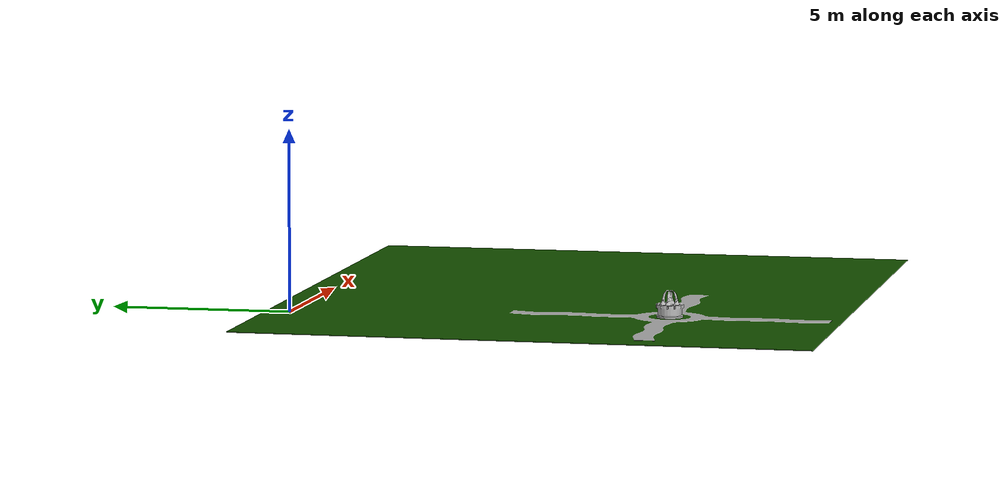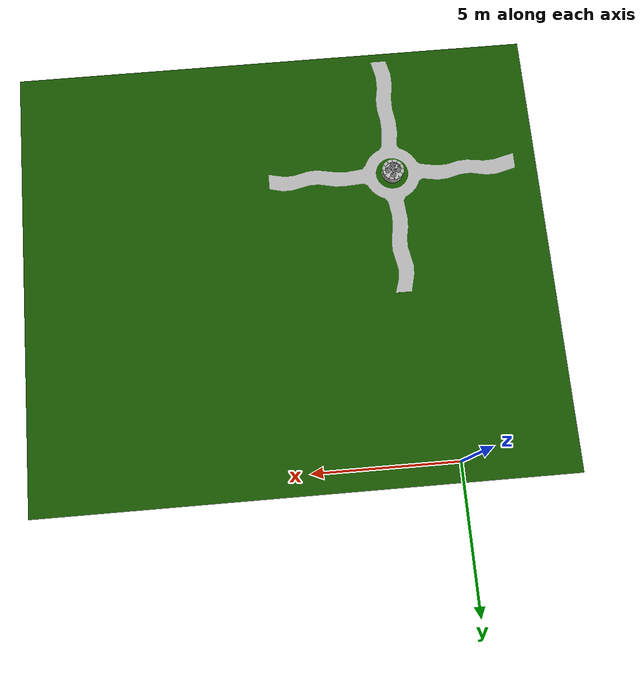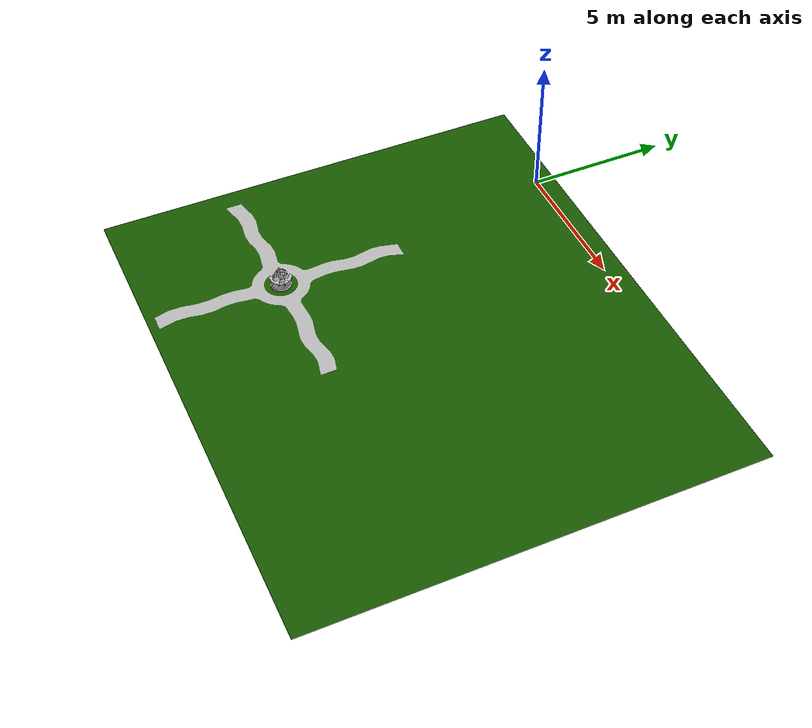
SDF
<?xml version="1.0" ?>
<sdf version="1.6">
  <model name="parkroad">
    <pose>0 0 0 0 0 0</pose>
    <static>true</static>
    <link name="body">
      <visual name="visual">
        <geometry>
          <mesh>
            <uri>model://parkroad/meshes/parkroad.dae</uri>
            <scale>0.0035 0.0035 0.0035</scale>
          </mesh>
        </geometry>
      </visual>
      <collision name="collision">
        <geometry>
          <mesh>
            <uri>model://parkroad/meshes/parkroad.dae</uri>
            <scale>0.0035 0.0035 0.0035</scale>
          </mesh>
        </geometry>
      </collision>
    </link>
  </model>
</sdf>
